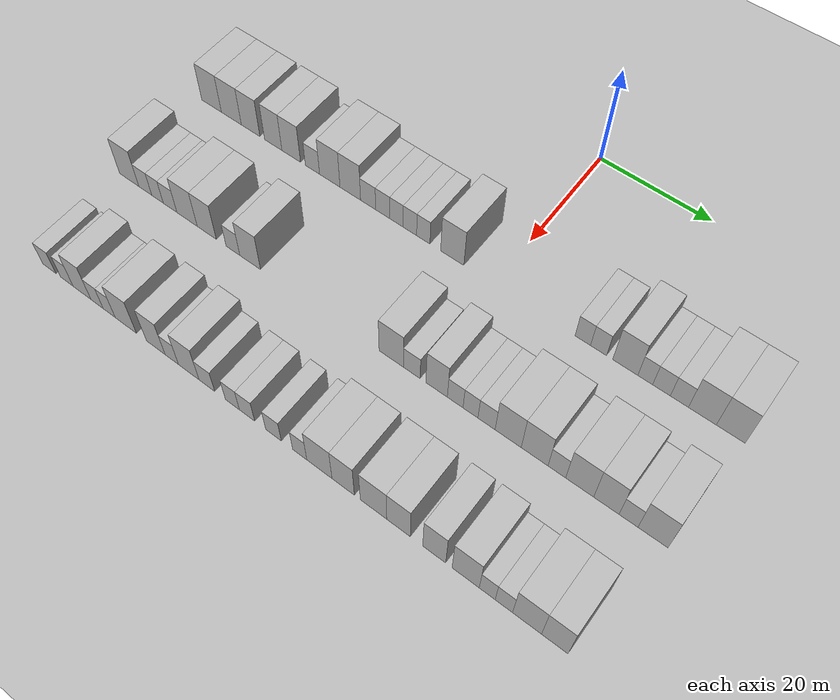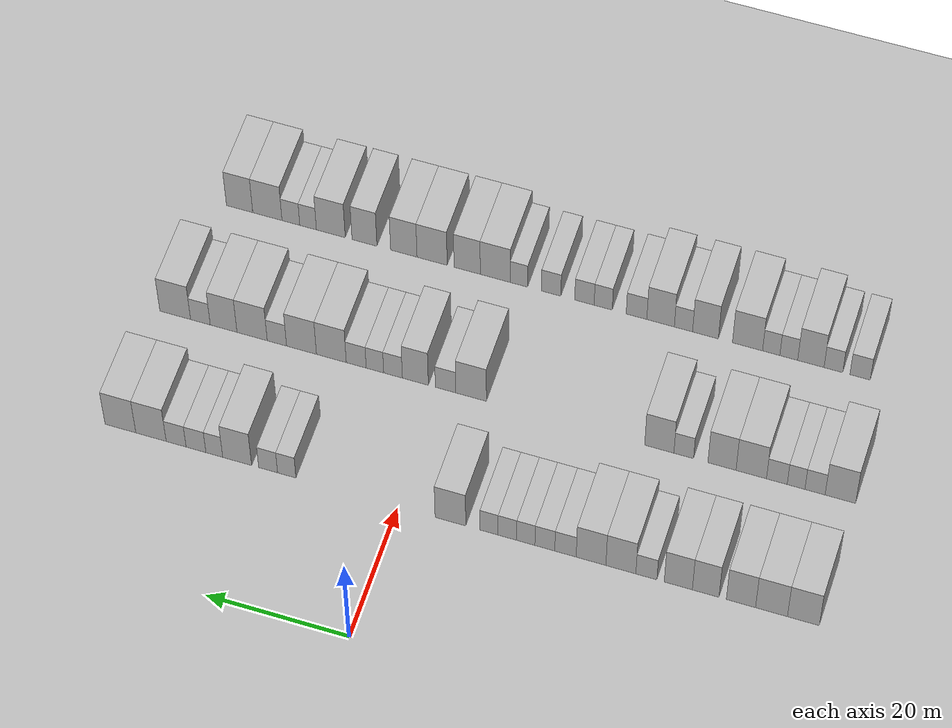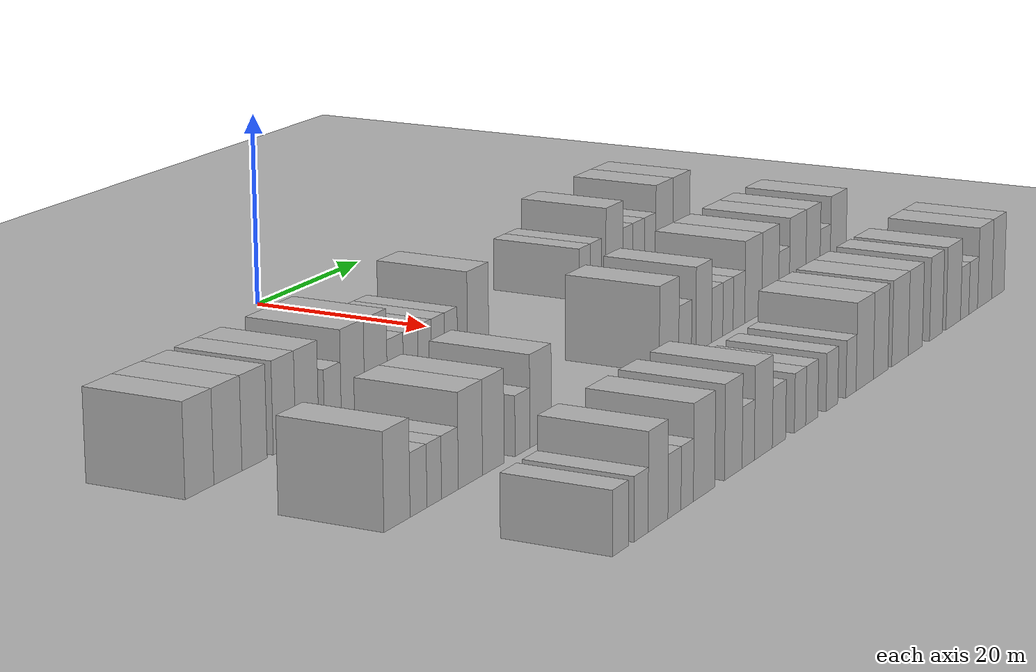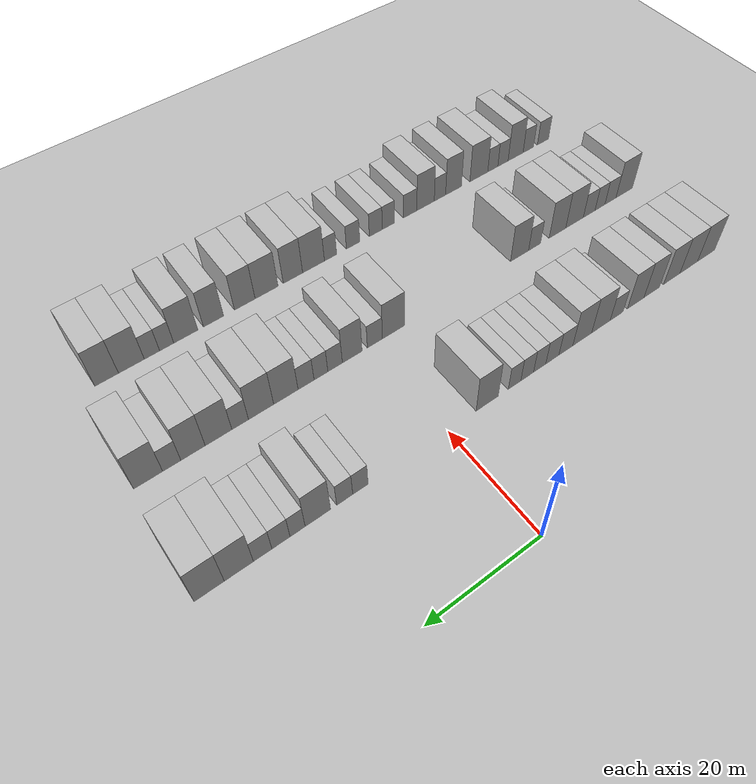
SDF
<sdf version="1.6">
 <world name="default">
  <include><name>ground_plane_1</name><uri>model://HANNAS_ground_plane</uri></include>
  <include>
   <name>ground_plane_2</name>
   <uri>model://HANNAS_ground_plane</uri>
   <pose>100 0 0  0 0 0</pose>
  </include>
  <model name="building_46">
   <static>1</static>
   <pose>25.0000 -56.0371 0 0.000000 0.000000 0.000000</pose>
   <link name="link">
    <pose>0 0 4.50 0 0 0</pose>
    <collision name="collision"><geometry><box><size>10.0000 4.3328 9.0000</size></box></geometry></collision>
    <visual name="visual">
     <cast_shadows>0</cast_shadows>
     <geometry><box><size>10.0000 4.3328 9.0000</size></box></geometry>
     <material>
      <script>
       <uri>model://HANNAS_wall/materials/scripts</uri>
       <uri>model://HANNAS_wall/materials/textures</uri>
       <name>vrc/HANNAS_wall</name>
      </script>
     </material>
    </visual>
   </link>
  </model>
  <model name="building_47">
   <static>1</static>
   <pose>25.0000 -51.6983 0 0.000000 0.000000 0.000000</pose>
   <link name="link">
    <pose>0 0 4.50 0 0 0</pose>
    <collision name="collision"><geometry><box><size>10.0000 4.3447 9.0000</size></box></geometry></collision>
    <visual name="visual">
     <cast_shadows>0</cast_shadows>
     <geometry><box><size>10.0000 4.3447 9.0000</size></box></geometry>
     <material>
      <script>
       <uri>model://HANNAS_wall/materials/scripts</uri>
       <uri>model://HANNAS_wall/materials/textures</uri>
       <name>vrc/HANNAS_wall</name>
      </script>
     </material>
    </visual>
   </link>
  </model>
  <model name="building_48">
   <static>1</static>
   <pose>25.0000 -47.5337 0 0.000000 0.000000 0.000000</pose>
   <link name="link">
    <pose>0 0 4.50 0 0 0</pose>
    <collision name="collision"><geometry><box><size>10.0000 3.9846 9.0000</size></box></geometry></collision>
    <visual name="visual">
     <cast_shadows>0</cast_shadows>
     <geometry><box><size>10.0000 3.9846 9.0000</size></box></geometry>
     <material>
      <script>
       <uri>model://HANNAS_wall/materials/scripts</uri>
       <uri>model://HANNAS_wall/materials/textures</uri>
       <name>vrc/HANNAS_wall</name>
      </script>
     </material>
    </visual>
   </link>
  </model>
  <model name="building_49">
   <static>1</static>
   <pose>25.0000 -42.7150 0 0.000000 0.000000 0.000000</pose>
   <link name="link">
    <pose>0 0 4.50 0 0 0</pose>
    <collision name="collision"><geometry><box><size>10.0000 3.6527 9.0000</size></box></geometry></collision>
    <visual name="visual">
     <cast_shadows>0</cast_shadows>
     <geometry><box><size>10.0000 3.6527 9.0000</size></box></geometry>
     <material>
      <script>
       <uri>model://HANNAS_wall/materials/scripts</uri>
       <uri>model://HANNAS_wall/materials/textures</uri>
       <name>vrc/HANNAS_wall</name>
      </script>
     </material>
    </visual>
   </link>
  </model>
  <model name="building_50">
   <static>1</static>
   <pose>25.0000 -38.9577 0 0.000000 0.000000 0.000000</pose>
   <link name="link">
    <pose>0 0 4.50 0 0 0</pose>
    <collision name="collision"><geometry><box><size>10.0000 3.8619 9.0000</size></box></geometry></collision>
    <visual name="visual">
     <cast_shadows>0</cast_shadows>
     <geometry><box><size>10.0000 3.8619 9.0000</size></box></geometry>
     <material>
      <script>
       <uri>model://HANNAS_wall/materials/scripts</uri>
       <uri>model://HANNAS_wall/materials/textures</uri>
       <name>vrc/HANNAS_wall</name>
      </script>
     </material>
    </visual>
   </link>
  </model>
  <model name="building_51">
   <static>1</static>
   <pose>25.0000 -34.5754 0 0.000000 0.000000 0.000000</pose>
   <link name="link">
    <pose>0 0 3.00 0 0 0</pose>
    <collision name="collision"><geometry><box><size>10.0000 2.9027 6.0000</size></box></geometry></collision>
    <visual name="visual">
     <cast_shadows>0</cast_shadows>
     <geometry><box><size>10.0000 2.9027 6.0000</size></box></geometry>
     <material>
      <script>
       <uri>model://HANNAS_wall/materials/scripts</uri>
       <uri>model://HANNAS_wall/materials/textures</uri>
       <name>vrc/HANNAS_wall</name>
      </script>
     </material>
    </visual>
   </link>
  </model>
  <model name="building_52">
   <static>1</static>
   <pose>25.0000 -31.0607 0 0.000000 0.000000 0.000000</pose>
   <link name="link">
    <pose>0 0 4.50 0 0 0</pose>
    <collision name="collision"><geometry><box><size>10.0000 4.1267 9.0000</size></box></geometry></collision>
    <visual name="visual">
     <cast_shadows>0</cast_shadows>
     <geometry><box><size>10.0000 4.1267 9.0000</size></box></geometry>
     <material>
      <script>
       <uri>model://HANNAS_wall/materials/scripts</uri>
       <uri>model://HANNAS_wall/materials/textures</uri>
       <name>vrc/HANNAS_wall</name>
      </script>
     </material>
    </visual>
   </link>
  </model>
  <model name="building_53">
   <static>1</static>
   <pose>25.0000 -26.9450 0 0.000000 0.000000 0.000000</pose>
   <link name="link">
    <pose>0 0 4.50 0 0 0</pose>
    <collision name="collision"><geometry><box><size>10.0000 4.1048 9.0000</size></box></geometry></collision>
    <visual name="visual">
     <cast_shadows>0</cast_shadows>
     <geometry><box><size>10.0000 4.1048 9.0000</size></box></geometry>
     <material>
      <script>
       <uri>model://HANNAS_wall/materials/scripts</uri>
       <uri>model://HANNAS_wall/materials/textures</uri>
       <name>vrc/HANNAS_wall</name>
      </script>
     </material>
    </visual>
   </link>
  </model>
  <model name="building_54">
   <static>1</static>
   <pose>25.0000 -23.4114 0 0.000000 0.000000 0.000000</pose>
   <link name="link">
    <pose>0 0 3.00 0 0 0</pose>
    <collision name="collision"><geometry><box><size>10.0000 2.9624 6.0000</size></box></geometry></collision>
    <visual name="visual">
     <cast_shadows>0</cast_shadows>
     <geometry><box><size>10.0000 2.9624 6.0000</size></box></geometry>
     <material>
      <script>
       <uri>model://HANNAS_wall/materials/scripts</uri>
       <uri>model://HANNAS_wall/materials/textures</uri>
       <name>vrc/HANNAS_wall</name>
      </script>
     </material>
    </visual>
   </link>
  </model>
  <model name="building_55">
   <static>1</static>
   <pose>25.0000 -20.5487 0 0.000000 0.000000 0.000000</pose>
   <link name="link">
    <pose>0 0 3.00 0 0 0</pose>
    <collision name="collision"><geometry><box><size>10.0000 2.7631 6.0000</size></box></geometry></collision>
    <visual name="visual">
     <cast_shadows>0</cast_shadows>
     <geometry><box><size>10.0000 2.7631 6.0000</size></box></geometry>
     <material>
      <script>
       <uri>model://HANNAS_wall/materials/scripts</uri>
       <uri>model://HANNAS_wall/materials/textures</uri>
       <name>vrc/HANNAS_wall</name>
      </script>
     </material>
    </visual>
   </link>
  </model>
  <model name="building_56">
   <static>1</static>
   <pose>25.0000 -17.9032 0 0.000000 0.000000 0.000000</pose>
   <link name="link">
    <pose>0 0 3.00 0 0 0</pose>
    <collision name="collision"><geometry><box><size>10.0000 2.5278 6.0000</size></box></geometry></collision>
    <visual name="visual">
     <cast_shadows>0</cast_shadows>
     <geometry><box><size>10.0000 2.5278 6.0000</size></box></geometry>
     <material>
      <script>
       <uri>model://HANNAS_wall/materials/scripts</uri>
       <uri>model://HANNAS_wall/materials/textures</uri>
       <name>vrc/HANNAS_wall</name>
      </script>
     </material>
    </visual>
   </link>
  </model>
  <model name="building_57">
   <static>1</static>
   <pose>25.0000 -15.3460 0 0.000000 0.000000 0.000000</pose>
   <link name="link">
    <pose>0 0 3.00 0 0 0</pose>
    <collision name="collision"><geometry><box><size>10.0000 2.5867 6.0000</size></box></geometry></collision>
    <visual name="visual">
     <cast_shadows>0</cast_shadows>
     <geometry><box><size>10.0000 2.5867 6.0000</size></box></geometry>
     <material>
      <script>
       <uri>model://HANNAS_wall/materials/scripts</uri>
       <uri>model://HANNAS_wall/materials/textures</uri>
       <name>vrc/HANNAS_wall</name>
      </script>
     </material>
    </visual>
   </link>
  </model>
  <model name="building_58">
   <static>1</static>
   <pose>25.0000 -12.7959 0 0.000000 0.000000 0.000000</pose>
   <link name="link">
    <pose>0 0 3.00 0 0 0</pose>
    <collision name="collision"><geometry><box><size>10.0000 2.5135 6.0000</size></box></geometry></collision>
    <visual name="visual">
     <cast_shadows>0</cast_shadows>
     <geometry><box><size>10.0000 2.5135 6.0000</size></box></geometry>
     <material>
      <script>
       <uri>model://HANNAS_wall/materials/scripts</uri>
       <uri>model://HANNAS_wall/materials/textures</uri>
       <name>vrc/HANNAS_wall</name>
      </script>
     </material>
    </visual>
   </link>
  </model>
  <model name="building_59">
   <static>1</static>
   <pose>25.0000 -7.3922 0 0.000000 0.000000 0.000000</pose>
   <link name="link">
    <pose>0 0 4.50 0 0 0</pose>
    <collision name="collision"><geometry><box><size>10.0000 4.2938 9.0000</size></box></geometry></collision>
    <visual name="visual">
     <cast_shadows>0</cast_shadows>
     <geometry><box><size>10.0000 4.2938 9.0000</size></box></geometry>
     <material>
      <script>
       <uri>model://HANNAS_wall/materials/scripts</uri>
       <uri>model://HANNAS_wall/materials/textures</uri>
       <name>vrc/HANNAS_wall</name>
      </script>
     </material>
    </visual>
   </link>
  </model>
  <model name="building_60">
   <static>1</static>
   <pose>25.0000 15.6666 0 0.000000 0.000000 0.000000</pose>
   <link name="link">
    <pose>0 0 3.00 0 0 0</pose>
    <collision name="collision"><geometry><box><size>10.0000 2.6079 6.0000</size></box></geometry></collision>
    <visual name="visual">
     <cast_shadows>0</cast_shadows>
     <geometry><box><size>10.0000 2.6079 6.0000</size></box></geometry>
     <material>
      <script>
       <uri>model://HANNAS_wall/materials/scripts</uri>
       <uri>model://HANNAS_wall/materials/textures</uri>
       <name>vrc/HANNAS_wall</name>
      </script>
     </material>
    </visual>
   </link>
  </model>
  <model name="building_61">
   <static>1</static>
   <pose>25.0000 18.3108 0 0.000000 0.000000 0.000000</pose>
   <link name="link">
    <pose>0 0 3.00 0 0 0</pose>
    <collision name="collision"><geometry><box><size>10.0000 2.6805 6.0000</size></box></geometry></collision>
    <visual name="visual">
     <cast_shadows>0</cast_shadows>
     <geometry><box><size>10.0000 2.6805 6.0000</size></box></geometry>
     <material>
      <script>
       <uri>model://HANNAS_wall/materials/scripts</uri>
       <uri>model://HANNAS_wall/materials/textures</uri>
       <name>vrc/HANNAS_wall</name>
      </script>
     </material>
    </visual>
   </link>
  </model>
  <model name="building_62">
   <static>1</static>
   <pose>25.0000 22.7149 0 0.000000 0.000000 0.000000</pose>
   <link name="link">
    <pose>0 0 4.50 0 0 0</pose>
    <collision name="collision"><geometry><box><size>10.0000 4.1275 9.0000</size></box></geometry></collision>
    <visual name="visual">
     <cast_shadows>0</cast_shadows>
     <geometry><box><size>10.0000 4.1275 9.0000</size></box></geometry>
     <material>
      <script>
       <uri>model://HANNAS_wall/materials/scripts</uri>
       <uri>model://HANNAS_wall/materials/textures</uri>
       <name>vrc/HANNAS_wall</name>
      </script>
     </material>
    </visual>
   </link>
  </model>
  <model name="building_63">
   <static>1</static>
   <pose>25.0000 25.9789 0 0.000000 0.000000 0.000000</pose>
   <link name="link">
    <pose>0 0 3.00 0 0 0</pose>
    <collision name="collision"><geometry><box><size>10.0000 2.4006 6.0000</size></box></geometry></collision>
    <visual name="visual">
     <cast_shadows>0</cast_shadows>
     <geometry><box><size>10.0000 2.4006 6.0000</size></box></geometry>
     <material>
      <script>
       <uri>model://HANNAS_wall/materials/scripts</uri>
       <uri>model://HANNAS_wall/materials/textures</uri>
       <name>vrc/HANNAS_wall</name>
      </script>
     </material>
    </visual>
   </link>
  </model>
  <model name="building_64">
   <static>1</static>
   <pose>25.0000 28.5937 0 0.000000 0.000000 0.000000</pose>
   <link name="link">
    <pose>0 0 3.00 0 0 0</pose>
    <collision name="collision"><geometry><box><size>10.0000 2.8291 6.0000</size></box></geometry></collision>
    <visual name="visual">
     <cast_shadows>0</cast_shadows>
     <geometry><box><size>10.0000 2.8291 6.0000</size></box></geometry>
     <material>
      <script>
       <uri>model://HANNAS_wall/materials/scripts</uri>
       <uri>model://HANNAS_wall/materials/textures</uri>
       <name>vrc/HANNAS_wall</name>
      </script>
     </material>
    </visual>
   </link>
  </model>
  <model name="building_65">
   <static>1</static>
   <pose>25.0000 31.4363 0 0.000000 0.000000 0.000000</pose>
   <link name="link">
    <pose>0 0 3.00 0 0 0</pose>
    <collision name="collision"><geometry><box><size>10.0000 2.8561 6.0000</size></box></geometry></collision>
    <visual name="visual">
     <cast_shadows>0</cast_shadows>
     <geometry><box><size>10.0000 2.8561 6.0000</size></box></geometry>
     <material>
      <script>
       <uri>model://HANNAS_wall/materials/scripts</uri>
       <uri>model://HANNAS_wall/materials/textures</uri>
       <name>vrc/HANNAS_wall</name>
      </script>
     </material>
    </visual>
   </link>
  </model>
  <model name="building_66">
   <static>1</static>
   <pose>25.0000 35.0451 0 0.000000 0.000000 0.000000</pose>
   <link name="link">
    <pose>0 0 4.50 0 0 0</pose>
    <collision name="collision"><geometry><box><size>10.0000 4.3615 9.0000</size></box></geometry></collision>
    <visual name="visual">
     <cast_shadows>0</cast_shadows>
     <geometry><box><size>10.0000 4.3615 9.0000</size></box></geometry>
     <material>
      <script>
       <uri>model://HANNAS_wall/materials/scripts</uri>
       <uri>model://HANNAS_wall/materials/textures</uri>
       <name>vrc/HANNAS_wall</name>
      </script>
     </material>
    </visual>
   </link>
  </model>
  <model name="building_67">
   <static>1</static>
   <pose>25.0000 39.4360 0 0.000000 0.000000 0.000000</pose>
   <link name="link">
    <pose>0 0 4.50 0 0 0</pose>
    <collision name="collision"><geometry><box><size>10.0000 4.4203 9.0000</size></box></geometry></collision>
    <visual name="visual">
     <cast_shadows>0</cast_shadows>
     <geometry><box><size>10.0000 4.4203 9.0000</size></box></geometry>
     <material>
      <script>
       <uri>model://HANNAS_wall/materials/scripts</uri>
       <uri>model://HANNAS_wall/materials/textures</uri>
       <name>vrc/HANNAS_wall</name>
      </script>
     </material>
    </visual>
   </link>
  </model>
  <model name="building_161">
   <static>1</static>
   <pose>44.0000 -55.9404 0 0.000000 0.000000 0.000000</pose>
   <link name="link">
    <pose>0 0 4.50 0 0 0</pose>
    <collision name="collision"><geometry><box><size>10.0000 4.2223 9.0000</size></box></geometry></collision>
    <visual name="visual">
     <cast_shadows>0</cast_shadows>
     <geometry><box><size>10.0000 4.2223 9.0000</size></box></geometry>
     <material>
      <script>
       <uri>model://HANNAS_wall/materials/scripts</uri>
       <uri>model://HANNAS_wall/materials/textures</uri>
       <name>vrc/HANNAS_wall</name>
      </script>
     </material>
    </visual>
   </link>
  </model>
  <model name="building_162">
   <static>1</static>
   <pose>44.0000 -52.4349 0 0.000000 0.000000 0.000000</pose>
   <link name="link">
    <pose>0 0 3.00 0 0 0</pose>
    <collision name="collision"><geometry><box><size>10.0000 2.7888 6.0000</size></box></geometry></collision>
    <visual name="visual">
     <cast_shadows>0</cast_shadows>
     <geometry><box><size>10.0000 2.7888 6.0000</size></box></geometry>
     <material>
      <script>
       <uri>model://HANNAS_wall/materials/scripts</uri>
       <uri>model://HANNAS_wall/materials/textures</uri>
       <name>vrc/HANNAS_wall</name>
      </script>
     </material>
    </visual>
   </link>
  </model>
  <model name="building_163">
   <static>1</static>
   <pose>44.0000 -49.8134 0 0.000000 0.000000 0.000000</pose>
   <link name="link">
    <pose>0 0 3.00 0 0 0</pose>
    <collision name="collision"><geometry><box><size>10.0000 2.4542 6.0000</size></box></geometry></collision>
    <visual name="visual">
     <cast_shadows>0</cast_shadows>
     <geometry><box><size>10.0000 2.4542 6.0000</size></box></geometry>
     <material>
      <script>
       <uri>model://HANNAS_wall/materials/scripts</uri>
       <uri>model://HANNAS_wall/materials/textures</uri>
       <name>vrc/HANNAS_wall</name>
      </script>
     </material>
    </visual>
   </link>
  </model>
  <model name="building_164">
   <static>1</static>
   <pose>44.0000 -47.1473 0 0.000000 0.000000 0.000000</pose>
   <link name="link">
    <pose>0 0 3.00 0 0 0</pose>
    <collision name="collision"><geometry><box><size>10.0000 2.8780 6.0000</size></box></geometry></collision>
    <visual name="visual">
     <cast_shadows>0</cast_shadows>
     <geometry><box><size>10.0000 2.8780 6.0000</size></box></geometry>
     <material>
      <script>
       <uri>model://HANNAS_wall/materials/scripts</uri>
       <uri>model://HANNAS_wall/materials/textures</uri>
       <name>vrc/HANNAS_wall</name>
      </script>
     </material>
    </visual>
   </link>
  </model>
  <model name="building_165">
   <static>1</static>
   <pose>44.0000 -43.5885 0 0.000000 0.000000 0.000000</pose>
   <link name="link">
    <pose>0 0 4.50 0 0 0</pose>
    <collision name="collision"><geometry><box><size>10.0000 4.2397 9.0000</size></box></geometry></collision>
    <visual name="visual">
     <cast_shadows>0</cast_shadows>
     <geometry><box><size>10.0000 4.2397 9.0000</size></box></geometry>
     <material>
      <script>
       <uri>model://HANNAS_wall/materials/scripts</uri>
       <uri>model://HANNAS_wall/materials/textures</uri>
       <name>vrc/HANNAS_wall</name>
      </script>
     </material>
    </visual>
   </link>
  </model>
  <model name="building_166">
   <static>1</static>
   <pose>44.0000 -39.5097 0 0.000000 0.000000 0.000000</pose>
   <link name="link">
    <pose>0 0 4.50 0 0 0</pose>
    <collision name="collision"><geometry><box><size>10.0000 3.9177 9.0000</size></box></geometry></collision>
    <visual name="visual">
     <cast_shadows>0</cast_shadows>
     <geometry><box><size>10.0000 3.9177 9.0000</size></box></geometry>
     <material>
      <script>
       <uri>model://HANNAS_wall/materials/scripts</uri>
       <uri>model://HANNAS_wall/materials/textures</uri>
       <name>vrc/HANNAS_wall</name>
      </script>
     </material>
    </visual>
   </link>
  </model>
  <model name="building_167">
   <static>1</static>
   <pose>44.0000 -34.1716 0 0.000000 0.000000 0.000000</pose>
   <link name="link">
    <pose>0 0 3.00 0 0 0</pose>
    <collision name="collision"><geometry><box><size>10.0000 2.7586 6.0000</size></box></geometry></collision>
    <visual name="visual">
     <cast_shadows>0</cast_shadows>
     <geometry><box><size>10.0000 2.7586 6.0000</size></box></geometry>
     <material>
      <script>
       <uri>model://HANNAS_wall/materials/scripts</uri>
       <uri>model://HANNAS_wall/materials/textures</uri>
       <name>vrc/HANNAS_wall</name>
      </script>
     </material>
    </visual>
   </link>
  </model>
  <model name="building_168">
   <static>1</static>
   <pose>44.0000 -30.7465 0 0.000000 0.000000 0.000000</pose>
   <link name="link">
    <pose>0 0 4.50 0 0 0</pose>
    <collision name="collision"><geometry><box><size>10.0000 4.0916 9.0000</size></box></geometry></collision>
    <visual name="visual">
     <cast_shadows>0</cast_shadows>
     <geometry><box><size>10.0000 4.0916 9.0000</size></box></geometry>
     <material>
      <script>
       <uri>model://HANNAS_wall/materials/scripts</uri>
       <uri>model://HANNAS_wall/materials/textures</uri>
       <name>vrc/HANNAS_wall</name>
      </script>
     </material>
    </visual>
   </link>
  </model>
  <model name="building_169">
   <static>1</static>
   <pose>44.0000 -4.1509 0 0.000000 0.000000 0.000000</pose>
   <link name="link">
    <pose>0 0 4.50 0 0 0</pose>
    <collision name="collision"><geometry><box><size>10.0000 4.3665 9.0000</size></box></geometry></collision>
    <visual name="visual">
     <cast_shadows>0</cast_shadows>
     <geometry><box><size>10.0000 4.3665 9.0000</size></box></geometry>
     <material>
      <script>
       <uri>model://HANNAS_wall/materials/scripts</uri>
       <uri>model://HANNAS_wall/materials/textures</uri>
       <name>vrc/HANNAS_wall</name>
      </script>
     </material>
    </visual>
   </link>
  </model>
  <model name="building_170">
   <static>1</static>
   <pose>44.0000 -0.5104 0 0.000000 0.000000 0.000000</pose>
   <link name="link">
    <pose>0 0 3.00 0 0 0</pose>
    <collision name="collision"><geometry><box><size>10.0000 2.9146 6.0000</size></box></geometry></collision>
    <visual name="visual">
     <cast_shadows>0</cast_shadows>
     <geometry><box><size>10.0000 2.9146 6.0000</size></box></geometry>
     <material>
      <script>
       <uri>model://HANNAS_wall/materials/scripts</uri>
       <uri>model://HANNAS_wall/materials/textures</uri>
       <name>vrc/HANNAS_wall</name>
      </script>
     </material>
    </visual>
   </link>
  </model>
  <model name="building_171">
   <static>1</static>
   <pose>44.0000 3.8048 0 0.000000 0.000000 0.000000</pose>
   <link name="link">
    <pose>0 0 4.50 0 0 0</pose>
    <collision name="collision"><geometry><box><size>10.0000 3.7159 9.0000</size></box></geometry></collision>
    <visual name="visual">
     <cast_shadows>0</cast_shadows>
     <geometry><box><size>10.0000 3.7159 9.0000</size></box></geometry>
     <material>
      <script>
       <uri>model://HANNAS_wall/materials/scripts</uri>
       <uri>model://HANNAS_wall/materials/textures</uri>
       <name>vrc/HANNAS_wall</name>
      </script>
     </material>
    </visual>
   </link>
  </model>
  <model name="building_172">
   <static>1</static>
   <pose>44.0000 7.0027 0 0.000000 0.000000 0.000000</pose>
   <link name="link">
    <pose>0 0 3.00 0 0 0</pose>
    <collision name="collision"><geometry><box><size>10.0000 2.6799 6.0000</size></box></geometry></collision>
    <visual name="visual">
     <cast_shadows>0</cast_shadows>
     <geometry><box><size>10.0000 2.6799 6.0000</size></box></geometry>
     <material>
      <script>
       <uri>model://HANNAS_wall/materials/scripts</uri>
       <uri>model://HANNAS_wall/materials/textures</uri>
       <name>vrc/HANNAS_wall</name>
      </script>
     </material>
    </visual>
   </link>
  </model>
  <model name="building_173">
   <static>1</static>
   <pose>44.0000 9.6026 0 0.000000 0.000000 0.000000</pose>
   <link name="link">
    <pose>0 0 3.00 0 0 0</pose>
    <collision name="collision"><geometry><box><size>10.0000 2.5199 6.0000</size></box></geometry></collision>
    <visual name="visual">
     <cast_shadows>0</cast_shadows>
     <geometry><box><size>10.0000 2.5199 6.0000</size></box></geometry>
     <material>
      <script>
       <uri>model://HANNAS_wall/materials/scripts</uri>
       <uri>model://HANNAS_wall/materials/textures</uri>
       <name>vrc/HANNAS_wall</name>
      </script>
     </material>
    </visual>
   </link>
  </model>
  <model name="building_174">
   <static>1</static>
   <pose>44.0000 12.2962 0 0.000000 0.000000 0.000000</pose>
   <link name="link">
    <pose>0 0 3.00 0 0 0</pose>
    <collision name="collision"><geometry><box><size>10.0000 2.8672 6.0000</size></box></geometry></collision>
    <visual name="visual">
     <cast_shadows>0</cast_shadows>
     <geometry><box><size>10.0000 2.8672 6.0000</size></box></geometry>
     <material>
      <script>
       <uri>model://HANNAS_wall/materials/scripts</uri>
       <uri>model://HANNAS_wall/materials/textures</uri>
       <name>vrc/HANNAS_wall</name>
      </script>
     </material>
    </visual>
   </link>
  </model>
  <model name="building_175">
   <static>1</static>
   <pose>44.0000 15.8773 0 0.000000 0.000000 0.000000</pose>
   <link name="link">
    <pose>0 0 4.50 0 0 0</pose>
    <collision name="collision"><geometry><box><size>10.0000 4.2950 9.0000</size></box></geometry></collision>
    <visual name="visual">
     <cast_shadows>0</cast_shadows>
     <geometry><box><size>10.0000 4.2950 9.0000</size></box></geometry>
     <material>
      <script>
       <uri>model://HANNAS_wall/materials/scripts</uri>
       <uri>model://HANNAS_wall/materials/textures</uri>
       <name>vrc/HANNAS_wall</name>
      </script>
     </material>
    </visual>
   </link>
  </model>
  <model name="building_176">
   <static>1</static>
   <pose>44.0000 20.1868 0 0.000000 0.000000 0.000000</pose>
   <link name="link">
    <pose>0 0 4.50 0 0 0</pose>
    <collision name="collision"><geometry><box><size>10.0000 4.3241 9.0000</size></box></geometry></collision>
    <visual name="visual">
     <cast_shadows>0</cast_shadows>
     <geometry><box><size>10.0000 4.3241 9.0000</size></box></geometry>
     <material>
      <script>
       <uri>model://HANNAS_wall/materials/scripts</uri>
       <uri>model://HANNAS_wall/materials/textures</uri>
       <name>vrc/HANNAS_wall</name>
      </script>
     </material>
    </visual>
   </link>
  </model>
  <model name="building_177">
   <static>1</static>
   <pose>44.0000 23.7470 0 0.000000 0.000000 0.000000</pose>
   <link name="link">
    <pose>0 0 3.00 0 0 0</pose>
    <collision name="collision"><geometry><box><size>10.0000 2.7964 6.0000</size></box></geometry></collision>
    <visual name="visual">
     <cast_shadows>0</cast_shadows>
     <geometry><box><size>10.0000 2.7964 6.0000</size></box></geometry>
     <material>
      <script>
       <uri>model://HANNAS_wall/materials/scripts</uri>
       <uri>model://HANNAS_wall/materials/textures</uri>
       <name>vrc/HANNAS_wall</name>
      </script>
     </material>
    </visual>
   </link>
  </model>
  <model name="building_178">
   <static>1</static>
   <pose>44.0000 27.3406 0 0.000000 0.000000 0.000000</pose>
   <link name="link">
    <pose>0 0 4.50 0 0 0</pose>
    <collision name="collision"><geometry><box><size>10.0000 4.3907 9.0000</size></box></geometry></collision>
    <visual name="visual">
     <cast_shadows>0</cast_shadows>
     <geometry><box><size>10.0000 4.3907 9.0000</size></box></geometry>
     <material>
      <script>
       <uri>model://HANNAS_wall/materials/scripts</uri>
       <uri>model://HANNAS_wall/materials/textures</uri>
       <name>vrc/HANNAS_wall</name>
      </script>
     </material>
    </visual>
   </link>
  </model>
  <model name="building_179">
   <static>1</static>
   <pose>44.0000 31.4836 0 0.000000 0.000000 0.000000</pose>
   <link name="link">
    <pose>0 0 4.50 0 0 0</pose>
    <collision name="collision"><geometry><box><size>10.0000 3.8953 9.0000</size></box></geometry></collision>
    <visual name="visual">
     <cast_shadows>0</cast_shadows>
     <geometry><box><size>10.0000 3.8953 9.0000</size></box></geometry>
     <material>
      <script>
       <uri>model://HANNAS_wall/materials/scripts</uri>
       <uri>model://HANNAS_wall/materials/textures</uri>
       <name>vrc/HANNAS_wall</name>
      </script>
     </material>
    </visual>
   </link>
  </model>
  <model name="building_180">
   <static>1</static>
   <pose>44.0000 34.8656 0 0.000000 0.000000 0.000000</pose>
   <link name="link">
    <pose>0 0 3.00 0 0 0</pose>
    <collision name="collision"><geometry><box><size>10.0000 2.8688 6.0000</size></box></geometry></collision>
    <visual name="visual">
     <cast_shadows>0</cast_shadows>
     <geometry><box><size>10.0000 2.8688 6.0000</size></box></geometry>
     <material>
      <script>
       <uri>model://HANNAS_wall/materials/scripts</uri>
       <uri>model://HANNAS_wall/materials/textures</uri>
       <name>vrc/HANNAS_wall</name>
      </script>
     </material>
    </visual>
   </link>
  </model>
  <model name="building_181">
   <static>1</static>
   <pose>44.0000 38.5421 0 0.000000 0.000000 0.000000</pose>
   <link name="link">
    <pose>0 0 4.50 0 0 0</pose>
    <collision name="collision"><geometry><box><size>10.0000 4.4842 9.0000</size></box></geometry></collision>
    <visual name="visual">
     <cast_shadows>0</cast_shadows>
     <geometry><box><size>10.0000 4.4842 9.0000</size></box></geometry>
     <material>
      <script>
       <uri>model://HANNAS_wall/materials/scripts</uri>
       <uri>model://HANNAS_wall/materials/textures</uri>
       <name>vrc/HANNAS_wall</name>
      </script>
     </material>
    </visual>
   </link>
  </model>
  <model name="building_267">
   <static>1</static>
   <pose>63.0000 -53.6077 0 0.000000 0.000000 0.000000</pose>
   <link name="link">
    <pose>0 0 3.00 0 0 0</pose>
    <collision name="collision"><geometry><box><size>10.0000 2.8661 6.0000</size></box></geometry></collision>
    <visual name="visual">
     <cast_shadows>0</cast_shadows>
     <geometry><box><size>10.0000 2.8661 6.0000</size></box></geometry>
     <material>
      <script>
       <uri>model://HANNAS_wall/materials/scripts</uri>
       <uri>model://HANNAS_wall/materials/textures</uri>
       <name>vrc/HANNAS_wall</name>
      </script>
     </material>
    </visual>
   </link>
  </model>
  <model name="building_268">
   <static>1</static>
   <pose>63.0000 -49.8560 0 0.000000 0.000000 0.000000</pose>
   <link name="link">
    <pose>0 0 3.00 0 0 0</pose>
    <collision name="collision"><geometry><box><size>10.0000 2.6371 6.0000</size></box></geometry></collision>
    <visual name="visual">
     <cast_shadows>0</cast_shadows>
     <geometry><box><size>10.0000 2.6371 6.0000</size></box></geometry>
     <material>
      <script>
       <uri>model://HANNAS_wall/materials/scripts</uri>
       <uri>model://HANNAS_wall/materials/textures</uri>
       <name>vrc/HANNAS_wall</name>
      </script>
     </material>
    </visual>
   </link>
  </model>
  <model name="building_269">
   <static>1</static>
   <pose>63.0000 -46.6749 0 0.000000 0.000000 0.000000</pose>
   <link name="link">
    <pose>0 0 4.50 0 0 0</pose>
    <collision name="collision"><geometry><box><size>10.0000 3.7251 9.0000</size></box></geometry></collision>
    <visual name="visual">
     <cast_shadows>0</cast_shadows>
     <geometry><box><size>10.0000 3.7251 9.0000</size></box></geometry>
     <material>
      <script>
       <uri>model://HANNAS_wall/materials/scripts</uri>
       <uri>model://HANNAS_wall/materials/textures</uri>
       <name>vrc/HANNAS_wall</name>
      </script>
     </material>
    </visual>
   </link>
  </model>
  <model name="building_270">
   <static>1</static>
   <pose>63.0000 -43.5496 0 0.000000 0.000000 0.000000</pose>
   <link name="link">
    <pose>0 0 3.00 0 0 0</pose>
    <collision name="collision"><geometry><box><size>10.0000 2.5255 6.0000</size></box></geometry></collision>
    <visual name="visual">
     <cast_shadows>0</cast_shadows>
     <geometry><box><size>10.0000 2.5255 6.0000</size></box></geometry>
     <material>
      <script>
       <uri>model://HANNAS_wall/materials/scripts</uri>
       <uri>model://HANNAS_wall/materials/textures</uri>
       <name>vrc/HANNAS_wall</name>
      </script>
     </material>
    </visual>
   </link>
  </model>
  <model name="building_271">
   <static>1</static>
   <pose>63.0000 -41.0649 0 0.000000 0.000000 0.000000</pose>
   <link name="link">
    <pose>0 0 3.00 0 0 0</pose>
    <collision name="collision"><geometry><box><size>10.0000 2.4439 6.0000</size></box></geometry></collision>
    <visual name="visual">
     <cast_shadows>0</cast_shadows>
     <geometry><box><size>10.0000 2.4439 6.0000</size></box></geometry>
     <material>
      <script>
       <uri>model://HANNAS_wall/materials/scripts</uri>
       <uri>model://HANNAS_wall/materials/textures</uri>
       <name>vrc/HANNAS_wall</name>
      </script>
     </material>
    </visual>
   </link>
  </model>
  <model name="building_272">
   <static>1</static>
   <pose>63.0000 -37.7071 0 0.000000 0.000000 0.000000</pose>
   <link name="link">
    <pose>0 0 4.50 0 0 0</pose>
    <collision name="collision"><geometry><box><size>10.0000 4.2716 9.0000</size></box></geometry></collision>
    <visual name="visual">
     <cast_shadows>0</cast_shadows>
     <geometry><box><size>10.0000 4.2716 9.0000</size></box></geometry>
     <material>
      <script>
       <uri>model://HANNAS_wall/materials/scripts</uri>
       <uri>model://HANNAS_wall/materials/textures</uri>
       <name>vrc/HANNAS_wall</name>
      </script>
     </material>
    </visual>
   </link>
  </model>
  <model name="building_273">
   <static>1</static>
   <pose>63.0000 -31.7315 0 0.000000 0.000000 0.000000</pose>
   <link name="link">
    <pose>0 0 4.50 0 0 0</pose>
    <collision name="collision"><geometry><box><size>10.0000 3.6797 9.0000</size></box></geometry></collision>
    <visual name="visual">
     <cast_shadows>0</cast_shadows>
     <geometry><box><size>10.0000 3.6797 9.0000</size></box></geometry>
     <material>
      <script>
       <uri>model://HANNAS_wall/materials/scripts</uri>
       <uri>model://HANNAS_wall/materials/textures</uri>
       <name>vrc/HANNAS_wall</name>
      </script>
     </material>
    </visual>
   </link>
  </model>
  <model name="building_274">
   <static>1</static>
   <pose>63.0000 -28.5929 0 0.000000 0.000000 0.000000</pose>
   <link name="link">
    <pose>0 0 3.00 0 0 0</pose>
    <collision name="collision"><geometry><box><size>10.0000 2.5976 6.0000</size></box></geometry></collision>
    <visual name="visual">
     <cast_shadows>0</cast_shadows>
     <geometry><box><size>10.0000 2.5976 6.0000</size></box></geometry>
     <material>
      <script>
       <uri>model://HANNAS_wall/materials/scripts</uri>
       <uri>model://HANNAS_wall/materials/textures</uri>
       <name>vrc/HANNAS_wall</name>
      </script>
     </material>
    </visual>
   </link>
  </model>
  <model name="building_275">
   <static>1</static>
   <pose>63.0000 -25.3257 0 0.000000 0.000000 0.000000</pose>
   <link name="link">
    <pose>0 0 4.50 0 0 0</pose>
    <collision name="collision"><geometry><box><size>10.0000 3.9366 9.0000</size></box></geometry></collision>
    <visual name="visual">
     <cast_shadows>0</cast_shadows>
     <geometry><box><size>10.0000 3.9366 9.0000</size></box></geometry>
     <material>
      <script>
       <uri>model://HANNAS_wall/materials/scripts</uri>
       <uri>model://HANNAS_wall/materials/textures</uri>
       <name>vrc/HANNAS_wall</name>
      </script>
     </material>
    </visual>
   </link>
  </model>
  <model name="building_276">
   <static>1</static>
   <pose>63.0000 -21.8822 0 0.000000 0.000000 0.000000</pose>
   <link name="link">
    <pose>0 0 3.00 0 0 0</pose>
    <collision name="collision"><geometry><box><size>10.0000 2.9505 6.0000</size></box></geometry></collision>
    <visual name="visual">
     <cast_shadows>0</cast_shadows>
     <geometry><box><size>10.0000 2.9505 6.0000</size></box></geometry>
     <material>
      <script>
       <uri>model://HANNAS_wall/materials/scripts</uri>
       <uri>model://HANNAS_wall/materials/textures</uri>
       <name>vrc/HANNAS_wall</name>
      </script>
     </material>
    </visual>
   </link>
  </model>
  <model name="building_277">
   <static>1</static>
   <pose>63.0000 -17.1062 0 0.000000 0.000000 0.000000</pose>
   <link name="link">
    <pose>0 0 3.00 0 0 0</pose>
    <collision name="collision"><geometry><box><size>10.0000 2.6015 6.0000</size></box></geometry></collision>
    <visual name="visual">
     <cast_shadows>0</cast_shadows>
     <geometry><box><size>10.0000 2.6015 6.0000</size></box></geometry>
     <material>
      <script>
       <uri>model://HANNAS_wall/materials/scripts</uri>
       <uri>model://HANNAS_wall/materials/textures</uri>
       <name>vrc/HANNAS_wall</name>
      </script>
     </material>
    </visual>
   </link>
  </model>
  <model name="building_278">
   <static>1</static>
   <pose>63.0000 -14.4108 0 0.000000 0.000000 0.000000</pose>
   <link name="link">
    <pose>0 0 3.00 0 0 0</pose>
    <collision name="collision"><geometry><box><size>10.0000 2.7893 6.0000</size></box></geometry></collision>
    <visual name="visual">
     <cast_shadows>0</cast_shadows>
     <geometry><box><size>10.0000 2.7893 6.0000</size></box></geometry>
     <material>
      <script>
       <uri>model://HANNAS_wall/materials/scripts</uri>
       <uri>model://HANNAS_wall/materials/textures</uri>
       <name>vrc/HANNAS_wall</name>
      </script>
     </material>
    </visual>
   </link>
  </model>
  <model name="building_279">
   <static>1</static>
   <pose>63.0000 -9.6144 0 0.000000 0.000000 0.000000</pose>
   <link name="link">
    <pose>0 0 3.00 0 0 0</pose>
    <collision name="collision"><geometry><box><size>10.0000 2.8033 6.0000</size></box></geometry></collision>
    <visual name="visual">
     <cast_shadows>0</cast_shadows>
     <geometry><box><size>10.0000 2.8033 6.0000</size></box></geometry>
     <material>
      <script>
       <uri>model://HANNAS_wall/materials/scripts</uri>
       <uri>model://HANNAS_wall/materials/textures</uri>
       <name>vrc/HANNAS_wall</name>
      </script>
     </material>
    </visual>
   </link>
  </model>
  <model name="building_280">
   <static>1</static>
   <pose>63.0000 -4.9637 0 0.000000 0.000000 0.000000</pose>
   <link name="link">
    <pose>0 0 3.00 0 0 0</pose>
    <collision name="collision"><geometry><box><size>10.0000 2.4981 6.0000</size></box></geometry></collision>
    <visual name="visual">
     <cast_shadows>0</cast_shadows>
     <geometry><box><size>10.0000 2.4981 6.0000</size></box></geometry>
     <material>
      <script>
       <uri>model://HANNAS_wall/materials/scripts</uri>
       <uri>model://HANNAS_wall/materials/textures</uri>
       <name>vrc/HANNAS_wall</name>
      </script>
     </material>
    </visual>
   </link>
  </model>
  <model name="building_281">
   <static>1</static>
   <pose>63.0000 -1.5330 0 0.000000 0.000000 0.000000</pose>
   <link name="link">
    <pose>0 0 4.50 0 0 0</pose>
    <collision name="collision"><geometry><box><size>10.0000 4.3633 9.0000</size></box></geometry></collision>
    <visual name="visual">
     <cast_shadows>0</cast_shadows>
     <geometry><box><size>10.0000 4.3633 9.0000</size></box></geometry>
     <material>
      <script>
       <uri>model://HANNAS_wall/materials/scripts</uri>
       <uri>model://HANNAS_wall/materials/textures</uri>
       <name>vrc/HANNAS_wall</name>
      </script>
     </material>
    </visual>
   </link>
  </model>
  <model name="building_282">
   <static>1</static>
   <pose>63.0000 2.5532 0 0.000000 0.000000 0.000000</pose>
   <link name="link">
    <pose>0 0 4.50 0 0 0</pose>
    <collision name="collision"><geometry><box><size>10.0000 3.8091 9.0000</size></box></geometry></collision>
    <visual name="visual">
     <cast_shadows>0</cast_shadows>
     <geometry><box><size>10.0000 3.8091 9.0000</size></box></geometry>
     <material>
      <script>
       <uri>model://HANNAS_wall/materials/scripts</uri>
       <uri>model://HANNAS_wall/materials/textures</uri>
       <name>vrc/HANNAS_wall</name>
      </script>
     </material>
    </visual>
   </link>
  </model>
  <model name="building_283">
   <static>1</static>
   <pose>63.0000 7.6558 0 0.000000 0.000000 0.000000</pose>
   <link name="link">
    <pose>0 0 4.50 0 0 0</pose>
    <collision name="collision"><geometry><box><size>10.0000 4.3961 9.0000</size></box></geometry></collision>
    <visual name="visual">
     <cast_shadows>0</cast_shadows>
     <geometry><box><size>10.0000 4.3961 9.0000</size></box></geometry>
     <material>
      <script>
       <uri>model://HANNAS_wall/materials/scripts</uri>
       <uri>model://HANNAS_wall/materials/textures</uri>
       <name>vrc/HANNAS_wall</name>
      </script>
     </material>
    </visual>
   </link>
  </model>
  <model name="building_284">
   <static>1</static>
   <pose>63.0000 11.7797 0 0.000000 0.000000 0.000000</pose>
   <link name="link">
    <pose>0 0 4.50 0 0 0</pose>
    <collision name="collision"><geometry><box><size>10.0000 3.8518 9.0000</size></box></geometry></collision>
    <visual name="visual">
     <cast_shadows>0</cast_shadows>
     <geometry><box><size>10.0000 3.8518 9.0000</size></box></geometry>
     <material>
      <script>
       <uri>model://HANNAS_wall/materials/scripts</uri>
       <uri>model://HANNAS_wall/materials/textures</uri>
       <name>vrc/HANNAS_wall</name>
      </script>
     </material>
    </visual>
   </link>
  </model>
  <model name="building_285">
   <static>1</static>
   <pose>63.0000 17.5341 0 0.000000 0.000000 0.000000</pose>
   <link name="link">
    <pose>0 0 4.50 0 0 0</pose>
    <collision name="collision"><geometry><box><size>10.0000 3.6571 9.0000</size></box></geometry></collision>
    <visual name="visual">
     <cast_shadows>0</cast_shadows>
     <geometry><box><size>10.0000 3.6571 9.0000</size></box></geometry>
     <material>
      <script>
       <uri>model://HANNAS_wall/materials/scripts</uri>
       <uri>model://HANNAS_wall/materials/textures</uri>
       <name>vrc/HANNAS_wall</name>
      </script>
     </material>
    </visual>
   </link>
  </model>
  <model name="building_286">
   <static>1</static>
   <pose>63.0000 22.4836 0 0.000000 0.000000 0.000000</pose>
   <link name="link">
    <pose>0 0 4.50 0 0 0</pose>
    <collision name="collision"><geometry><box><size>10.0000 4.2418 9.0000</size></box></geometry></collision>
    <visual name="visual">
     <cast_shadows>0</cast_shadows>
     <geometry><box><size>10.0000 4.2418 9.0000</size></box></geometry>
     <material>
      <script>
       <uri>model://HANNAS_wall/materials/scripts</uri>
       <uri>model://HANNAS_wall/materials/textures</uri>
       <name>vrc/HANNAS_wall</name>
      </script>
     </material>
    </visual>
   </link>
  </model>
  <model name="building_287">
   <static>1</static>
   <pose>63.0000 25.8274 0 0.000000 0.000000 0.000000</pose>
   <link name="link">
    <pose>0 0 3.00 0 0 0</pose>
    <collision name="collision"><geometry><box><size>10.0000 2.4457 6.0000</size></box></geometry></collision>
    <visual name="visual">
     <cast_shadows>0</cast_shadows>
     <geometry><box><size>10.0000 2.4457 6.0000</size></box></geometry>
     <material>
      <script>
       <uri>model://HANNAS_wall/materials/scripts</uri>
       <uri>model://HANNAS_wall/materials/textures</uri>
       <name>vrc/HANNAS_wall</name>
      </script>
     </material>
    </visual>
   </link>
  </model>
  <model name="building_288">
   <static>1</static>
   <pose>63.0000 28.3618 0 0.000000 0.000000 0.000000</pose>
   <link name="link">
    <pose>0 0 3.00 0 0 0</pose>
    <collision name="collision"><geometry><box><size>10.0000 2.6231 6.0000</size></box></geometry></collision>
    <visual name="visual">
     <cast_shadows>0</cast_shadows>
     <geometry><box><size>10.0000 2.6231 6.0000</size></box></geometry>
     <material>
      <script>
       <uri>model://HANNAS_wall/materials/scripts</uri>
       <uri>model://HANNAS_wall/materials/textures</uri>
       <name>vrc/HANNAS_wall</name>
      </script>
     </material>
    </visual>
   </link>
  </model>
  <model name="building_289">
   <static>1</static>
   <pose>63.0000 31.8366 0 0.000000 0.000000 0.000000</pose>
   <link name="link">
    <pose>0 0 4.50 0 0 0</pose>
    <collision name="collision"><geometry><box><size>10.0000 4.3266 9.0000</size></box></geometry></collision>
    <visual name="visual">
     <cast_shadows>0</cast_shadows>
     <geometry><box><size>10.0000 4.3266 9.0000</size></box></geometry>
     <material>
      <script>
       <uri>model://HANNAS_wall/materials/scripts</uri>
       <uri>model://HANNAS_wall/materials/textures</uri>
       <name>vrc/HANNAS_wall</name>
      </script>
     </material>
    </visual>
   </link>
  </model>
  <model name="building_290">
   <static>1</static>
   <pose>63.0000 35.9445 0 0.000000 0.000000 0.000000</pose>
   <link name="link">
    <pose>0 0 4.50 0 0 0</pose>
    <collision name="collision"><geometry><box><size>10.0000 3.8891 9.0000</size></box></geometry></collision>
    <visual name="visual">
     <cast_shadows>0</cast_shadows>
     <geometry><box><size>10.0000 3.8891 9.0000</size></box></geometry>
     <material>
      <script>
       <uri>model://HANNAS_wall/materials/scripts</uri>
       <uri>model://HANNAS_wall/materials/textures</uri>
       <name>vrc/HANNAS_wall</name>
      </script>
     </material>
    </visual>
   </link>
  </model>
 </world>
</sdf>
